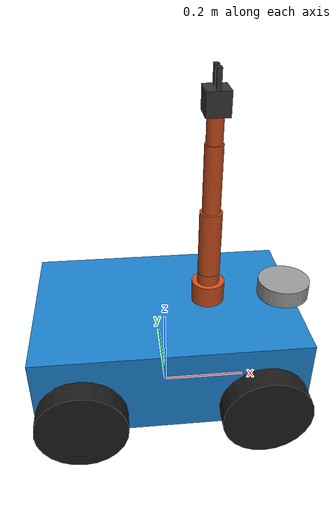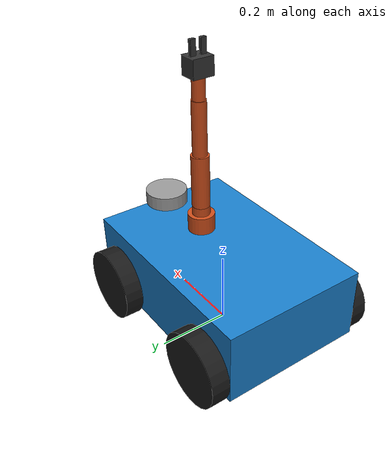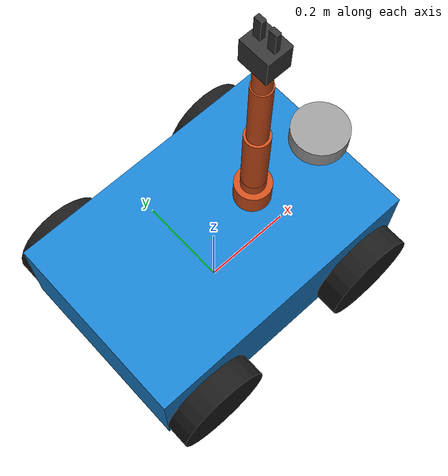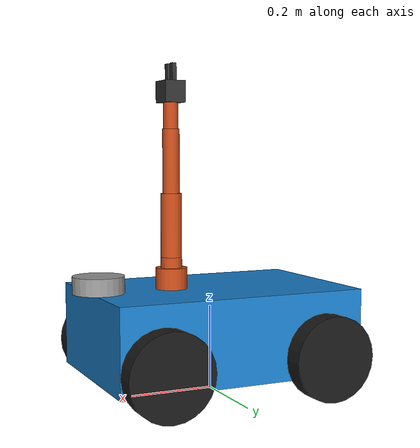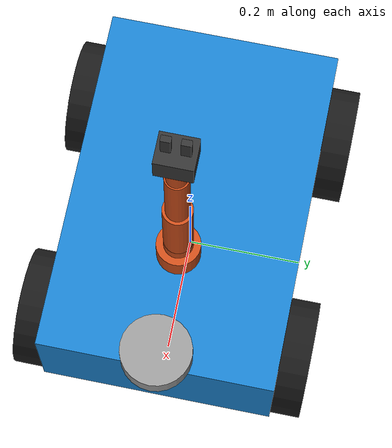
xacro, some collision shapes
<?xml version="1.0"?>
<robot name="four_wheel_robot" xmlns:xacro="http://www.ros.org/wiki/xacro">

    <xacro:arg name="mesh_path" default="package://robot_description/meshes/"/>

    <xacro:include filename="$(find robot_description)/urdf/robot_gazebo.xacro" />
    <xacro:include filename="$(find robot_description)/urdf/robot_ros2_control.xacro" />

    <!-- mobile robot properties -->
    <xacro:property name="base_length" value="0.6"/>
    <xacro:property name="base_width" value="0.4"/>
    <xacro:property name="base_height" value="0.2"/>
    <xacro:property name="base_mass" value="5.0"/>

    <xacro:property name="wheel_radius" value="0.1"/>
    <xacro:property name="wheel_width" value="0.05"/>
    <xacro:property name="wheel_mass" value="0.5"/>

    <xacro:property name="wheel_x_offset" value="0.2"/>
    <xacro:property name="wheel_y_offset" value="0.225"/>
    <xacro:property name="wheel_z_offset" value="-0.05"/>

    <!-- arm robot properties -->
    <xacro:property name="link_radius" value="0.025"/>
    <xacro:property name="shoulder_length" value="0.05"/>
    <xacro:property name="upper_arm_length" value="0.15"/>
    <xacro:property name="forearm_length" value="0.15"/>
    <xacro:property name="wrist_length" value="0.06"/>
    <xacro:property name="gripper_length" value="0.05"/>
    <xacro:property name="finger_length" value="0.04"/>

    <xacro:property name="arm_base_mass" value="0.1"/>
    <xacro:property name="shoulder_mass" value="0.2"/>
    <xacro:property name="upper_arm_mass" value="0.3"/>
    <xacro:property name="forearm_mass" value="0.25"/>
    <xacro:property name="wrist_mass" value="0.15"/>
    <xacro:property name="gripper_base_mass" value="0.15"/>
    <xacro:property name="finger_mass" value="0.05"/>

    <!-- gripper properties -->
     <xacro:property name="finger_width" value="0.015"/>
    <xacro:property name="finger_thickness" value="0.01"/>
    <xacro:property name="finger_gap" value="0.015"/>

    <link name="base_footprint"/>

    <link name="base_link">
        <visual>
            <geometry>
                <box size="${base_length} ${base_width} ${base_height}"/>
            </geometry>
            <material name="chassis_color">
                <color rgba="0.1 0.5 0.8 1.0"/>
            </material>
        </visual>
        <collision>
            <geometry>
                <box size="${base_length} ${base_width} ${base_height}"/>
            </geometry>
        </collision>
        <inertial>
            <mass value="${base_mass}"/>

            <origin xyz="0 0 0" rpy="0 0 0"/>

            <inertia
                ixx="${(1/12) * base_mass * (base_width*base_width + base_height*base_height)}"
                ixy="0.0"
                ixz="0.0"
                iyy="${(1/12) * base_mass * (base_length*base_length + base_height*base_height)}"
                iyz="0.0"
                izz="${(1/12) * base_mass * (base_length*base_length + base_width*base_width)}"/>
        </inertial>

    </link>

    <joint name="base_footprint_joint" type="fixed">
        <parent link="base_footprint"/>
        <child link="base_link"/>
        <origin xyz="0 0 0.15" rpy="0 0 0"/>
    </joint>

    <xacro:macro name="wheel" params="prefix x_reflect y_reflect">
        <link name="${prefix}_wheel_link">
            <visual>
                <origin xyz="0 0 0" rpy="${pi/2} 0 0"/>
                <geometry>
                    <cylinder radius="${wheel_radius}" length="${wheel_width}"/>
                </geometry>
                <material name="wheel_color">
                    <color rgba="0.1 0.1 0.1 1.0"/>
                </material>
            </visual>
            <collision>
                <origin xyz="0 0 0" rpy="${pi/2} 0 0"/>
                <geometry>
                    <cylinder radius="${wheel_radius}" length="${wheel_width}"/>
                </geometry>
            </collision>
            <inertial>
                <mass value="${wheel_mass}"/>
                <origin xyz="0 0 0" rpy="${pi/2} 0 0"/>
                <inertia
                    ixx="${(1/12) * wheel_mass * (3*wheel_radius*wheel_radius + wheel_width*wheel_width)}"
                    ixy="0.0"
                    ixz="0.0"
                    iyy="${(1/12) * wheel_mass * (3*wheel_radius*wheel_radius + wheel_width*wheel_width)}"
                    iyz="0.0"
                    izz="${(1/2) * wheel_mass * (wheel_radius*wheel_radius)}"/>
            </inertial>
        </link>

        <joint name="${prefix}_wheel_joint" type="continuous">
            <parent link="base_link"/>
            <child link="${prefix}_wheel_link"/>

            <origin
                xyz="${x_reflect * wheel_x_offset} ${y_reflect * wheel_y_offset} ${wheel_z_offset}"
                rpy="0 0 0"/>

            <axis xyz="0 1 0"/>
        </joint>
    </xacro:macro>

    <xacro:wheel prefix="front_left" x_reflect="1" y_reflect="1"/>
    <xacro:wheel prefix="front_right" x_reflect="1"  y_reflect="-1"/>
    <xacro:wheel prefix="rear_left"   x_reflect="-1" y_reflect="1"/>
    <xacro:wheel prefix="rear_right"  x_reflect="-1" y_reflect="-1"/>

    <xacro:macro name="cylinder_inertial" params="mass radius length *origin">
        <inertial>
            <xacro:insert_block name="origin"/>
            <mass value="${mass}"/>
            <inertia
                ixx="${(1/12) * mass * (3*radius*radius + length*length)}"
                ixy="0.0" ixz="0.0"
                iyy="${(1/12) * mass * (3*radius*radius + length*length)}"
                iyz="0.0"
                izz="${(1/2) * mass * radius*radius}"/>
        </inertial>
    </xacro:macro>

    <xacro:macro name="box_inertial" params="mass x y z *origin">
        <inertial>
            <xacro:insert_block name="origin"/>
            <mass value="${mass}"/>
            <inertia
                ixx="${(1/12) * mass * (y*y + z*z)}"
                ixy="0.0" ixz="0.0"
                iyy="${(1/12) * mass * (x*x + z*z)}"
                iyz="0.0"
                izz="${(1/12) * mass * (x*x + y*y)}"/>
        </inertial>
    </xacro:macro>

    <link name="arm_mount_link"/>

    <joint name="arm_mount_joint" type="fixed">
        <parent link="base_link"/>
        <child link="arm_mount_link"/>
        <origin xyz="0.1 0 ${base_height/2}" rpy="0 0 0"/>
    </joint>

    <link name="arm_base_link">
        <visual>
            <geometry>
                <cylinder radius="${link_radius*1.5}" length="${shoulder_length}"/>
            </geometry>
            <material name="arm_color">
                <color rgba="0.8 0.3 0.1 1.0"/>
            </material>
        </visual>
        <collision>
            <geometry>
                <cylinder radius="${link_radius*1.5}" length="${shoulder_length}"/>
            </geometry>
        </collision>
        <xacro:cylinder_inertial mass="${arm_base_mass}" radius="${link_radius*1.5}" length="${shoulder_length}">
            <origin xyz="0 0 0" rpy="0 0 0"/>
        </xacro:cylinder_inertial>
    </link>

    <joint name="arm_base_joint" type="fixed">
        <parent link="arm_mount_link"/>
        <child link="arm_base_link"/>
        <origin xyz="0 0 ${shoulder_length/2}" rpy="0 0 0"/>
    </joint>

    <link name="shoulder_link">
        <visual>
            <geometry>
                <cylinder radius="${link_radius}" length="${shoulder_length}"/>
            </geometry>
            <material name="arm_color"/>
        </visual>
        <collision>
            <geometry>
                <cylinder radius="${link_radius}" length="${shoulder_length}"/>
            </geometry>
        </collision>
        <xacro:cylinder_inertial mass="${shoulder_mass}" radius="${link_radius}" length="${shoulder_length}">
            <origin xyz="0 0 0" rpy="0 0 0"/>
        </xacro:cylinder_inertial>
    </link>

    <joint name="shoulder_yaw_joint" type="revolute">
        <parent link="arm_base_link"/>
        <child link="shoulder_link"/>
        <origin xyz="0 0 ${shoulder_length/2}" rpy="0 0 0"/>
        <axis xyz="0 0 1"/>
        <limit lower="-3.1416" upper="3.1416" effort="10" velocity="1.0"/>
    </joint>

    <link name="upper_arm_link">
        <visual>
            <origin xyz="0 0 ${upper_arm_length/2}" rpy="0 0 0"/>
            <geometry>
                <cylinder radius="${link_radius}" length="${upper_arm_length}"/>
            </geometry>
            <material name="arm_color"/>
        </visual>
        <collision>
            <origin xyz="0 0 ${upper_arm_length/2}" rpy="0 0 0"/>
            <geometry>
                <cylinder radius="${link_radius}" length="${upper_arm_length}"/>
            </geometry>
        </collision>
        <xacro:cylinder_inertial mass="${upper_arm_mass}" radius="${link_radius}" length="${upper_arm_length}">
            <origin xyz="0 0 ${upper_arm_length/2}" rpy="0 0 0"/>
        </xacro:cylinder_inertial>
    </link>

    <joint name="shoulder_pitch_joint" type="revolute">
        <parent link="shoulder_link"/>
        <child link="upper_arm_link"/>
        <origin xyz="0 0 ${shoulder_length/2}" rpy="0 0 0"/>
        <axis xyz="0 1 0"/>
        <limit lower="-1.5708" upper="1.5708" effort="10" velocity="1.0"/>
    </joint>

    <link name="forearm_link">
        <visual>
            <origin xyz="0 0 ${forearm_length/2}" rpy="0 0 0"/>
            <geometry>
                <cylinder radius="${link_radius*0.8}" length="${forearm_length}"/>
            </geometry>
            <material name="arm_color"/>
        </visual>
        <collision>
            <origin xyz="0 0 ${forearm_length/2}" rpy="0 0 0"/>
            <geometry>
                <cylinder radius="${link_radius*0.8}" length="${forearm_length}"/>
            </geometry>
        </collision>
        <xacro:cylinder_inertial mass="${forearm_mass}" radius="${link_radius*0.8}" length="${forearm_length}">
            <origin xyz="0 0 ${forearm_length/2}" rpy="0 0 0"/>
        </xacro:cylinder_inertial>
    </link>

    <joint name="elbow_pitch_joint" type="revolute">
        <parent link="upper_arm_link"/>
        <child link="forearm_link"/>
        <origin xyz="0 0 ${upper_arm_length}" rpy="0 0 0"/>
        <axis xyz="0 1 0"/>
        <limit lower="0" upper="2.618" effort="10" velocity="1.0"/>
    </joint>

    <link name="wrist_link">
        <visual>
            <origin xyz="0 0 ${wrist_length/2}" rpy="0 0 0"/>
            <geometry>
                <cylinder radius="${link_radius*0.7}" length="${wrist_length}"/>
            </geometry>
            <material name="arm_color"/>
        </visual>
        <collision>
            <origin xyz="0 0 ${wrist_length/2}" rpy="0 0 0"/>
            <geometry>
                <cylinder radius="${link_radius*0.7}" length="${wrist_length}"/>
            </geometry>
        </collision>
        <xacro:cylinder_inertial mass="${wrist_mass}" radius="${link_radius*0.7}" length="${wrist_length}">
            <origin xyz="0 0 ${wrist_length/2}" rpy="0 0 0"/>
        </xacro:cylinder_inertial>
    </link>

    <joint name="wrist_pitch_joint" type="revolute">
        <parent link="forearm_link"/>
        <child link="wrist_link"/>
        <origin xyz="0 0 ${forearm_length}" rpy="0 0 0"/>
        <axis xyz="0 1 0"/>
        <limit lower="-1.5708" upper="1.5708" effort="5" velocity="1.0"/>
    </joint>

    <link name="gripper_base_link">
        <visual>
            <origin xyz="0 0 ${gripper_length/2}" rpy="0 0 0"/>
            <geometry>
                <box size="0.05 0.06 ${gripper_length}"/>
            </geometry>
            <material name="gripper_color">
                <color rgba="0.2 0.2 0.2 1.0"/>
            </material>
        </visual>
        <collision>
            <origin xyz="0 0 ${gripper_length/2}" rpy="0 0 0"/>
            <geometry>
                <box size="0.05 0.06 ${gripper_length}"/>
            </geometry>
        </collision>
        <xacro:box_inertial mass="${gripper_base_mass}" x="0.05" y="0.06" z="${gripper_length}">
            <origin xyz="0 0 ${gripper_length/2}" rpy="0 0 0"/>
        </xacro:box_inertial>
    </link>

    <joint name="gripper_mount_joint" type="fixed">
        <parent link="wrist_link"/>
        <child link="gripper_base_link"/>
        <origin xyz="0 0 ${wrist_length}" rpy="0 0 0"/>
    </joint>

    <link name="left_finger_link">
        <visual>
            <origin xyz="0 0 ${finger_length/2}" rpy="0 0 0"/>
            <geometry>
                <box size="${finger_thickness} ${finger_width} ${finger_length}"/>
            </geometry>
            <material name="gripper_color"/>
        </visual>
        <collision>
            <origin xyz="0 0 ${finger_length/2}" rpy="0 0 0"/>
            <geometry>
                <box size="${finger_thickness} ${finger_width} ${finger_length}"/>
            </geometry>
        </collision>
        <xacro:box_inertial mass="${finger_mass}" x="${finger_thickness}" y="${finger_width}" z="${finger_length}">
            <origin xyz="0 0 ${finger_length/2}" rpy="0 0 0"/>
        </xacro:box_inertial>
    </link>

    <joint name="left_finger_joint" type="prismatic">
        <parent link="gripper_base_link"/>
        <child link="left_finger_link"/>
        <origin xyz="0 ${finger_gap} ${gripper_length}" rpy="0 0 0"/>
        <axis xyz="0 1 0"/>
        <limit lower="0" upper="0.02" effort="5" velocity="0.5"/>
    </joint>

    <link name="right_finger_link">
        <visual>
            <origin xyz="0 0 ${finger_length/2}" rpy="0 0 0"/>
            <geometry>
                <box size="${finger_thickness} ${finger_width} ${finger_length}"/>
            </geometry>
            <material name="gripper_color"/>
        </visual>
        <collision>
            <origin xyz="0 0 ${finger_length/2}" rpy="0 0 0"/>
            <geometry>
                <box size="${finger_thickness} ${finger_width} ${finger_length}"/>
            </geometry>
        </collision>
        <xacro:box_inertial mass="${finger_mass}" x="${finger_thickness}" y="${finger_width}" z="${finger_length}">
            <origin xyz="0 0 ${finger_length/2}" rpy="0 0 0"/>
        </xacro:box_inertial>
    </link>

    <joint name="right_finger_joint" type="prismatic">
        <parent link="gripper_base_link"/>
        <child link="right_finger_link"/>
        <origin xyz="0 -${finger_gap} ${gripper_length}" rpy="0 0 0"/>
        <axis xyz="0 1 0"/>
        <limit lower="-0.02" upper="0" effort="5" velocity="0.5"/>
        <mimic joint="left_finger_joint" multiplier="-1" offset="0"/>
    </joint>

    <link name="lidar_link">
        <visual>
            <origin xyz="0 0 0" rpy="0 0 0"/>
            <geometry>
                <mesh filename="$(arg mesh_path)lidar.STL"/>
            </geometry>
            <material name="lidar_gray">
                <color rgba="0.6 0.6 0.6 1.0"/>
            </material>
        </visual>
        <collision>
            <origin xyz="0 0 0" rpy="0 0 0"/>
            <geometry>
                <cylinder radius="0.06" length="0.04"/>
            </geometry>
        </collision>
        <inertial>
            <mass value="0.2"/>
            <origin xyz="0 0 0" rpy="0 0 0"/>
            <inertia ixx="0.0001" ixy="0.0" ixz="0.0"
                    iyy="0.0001" iyz="0.0"
                    izz="0.0001"/>
        </inertial>
    </link>

    <joint name="lidar_joint" type="fixed">
        <parent link="base_link"/>
        <child link="lidar_link"/>
        <origin xyz="0.28 0 ${base_height/2 + 0.02}" rpy="0 0 0"/>
    </joint>

</robot>
